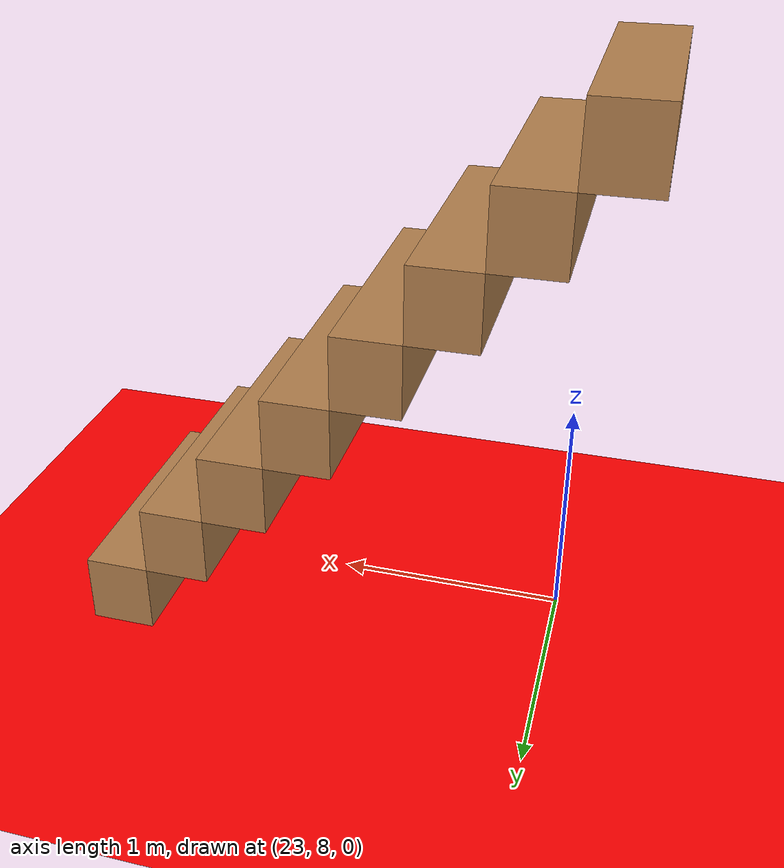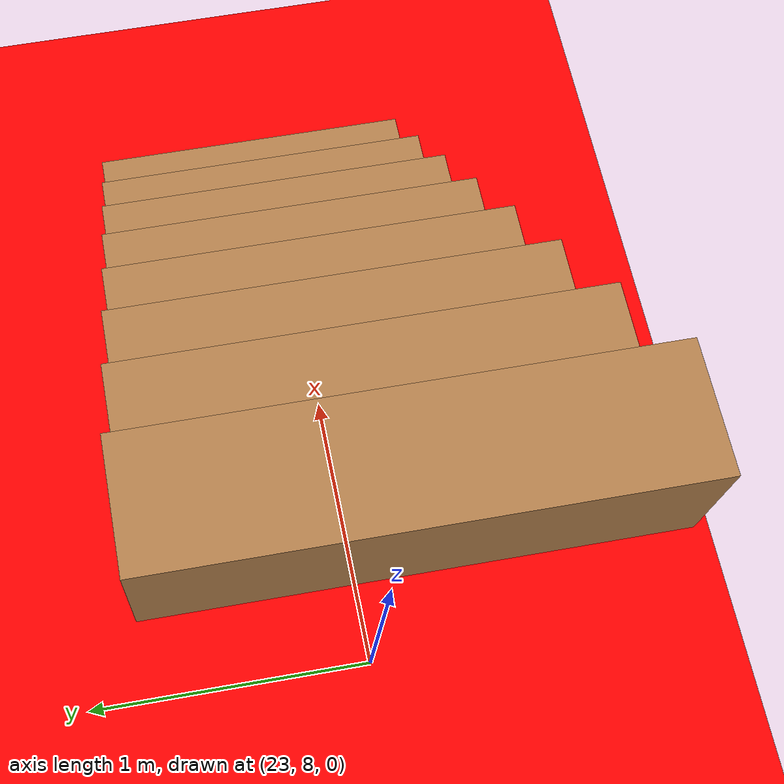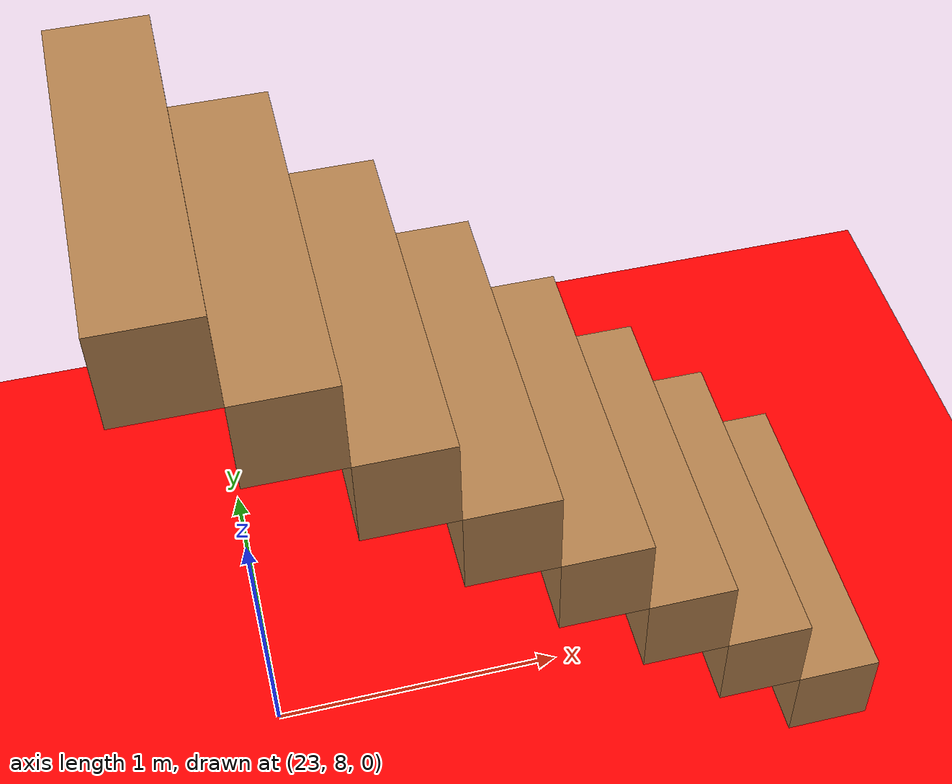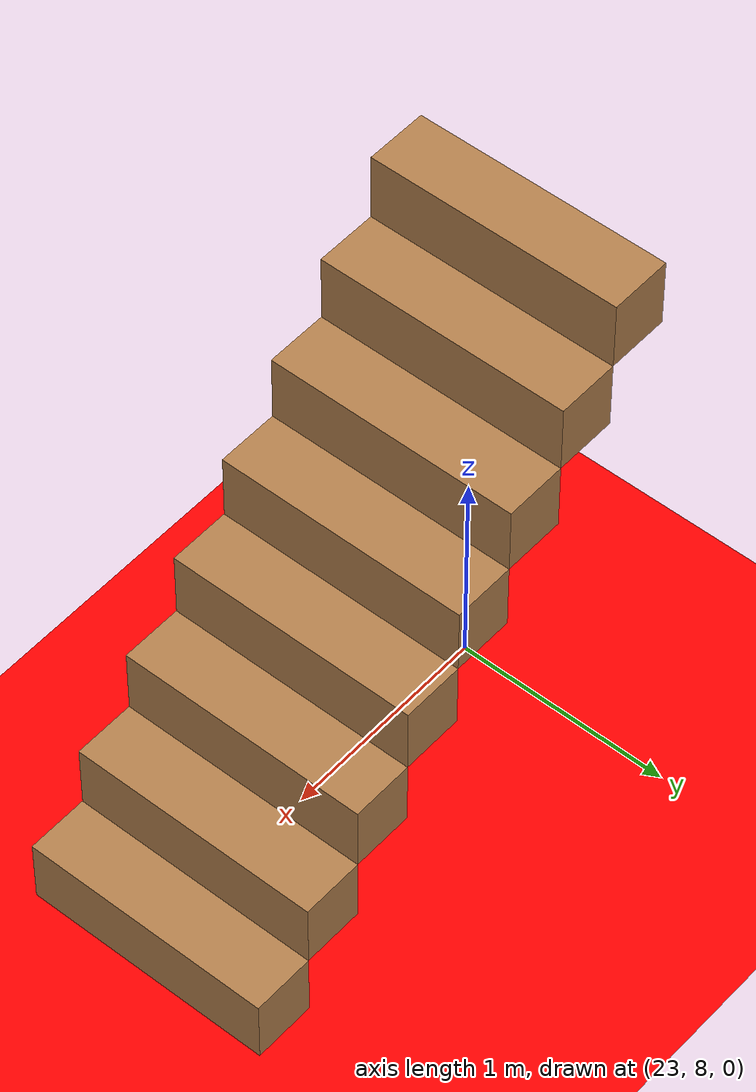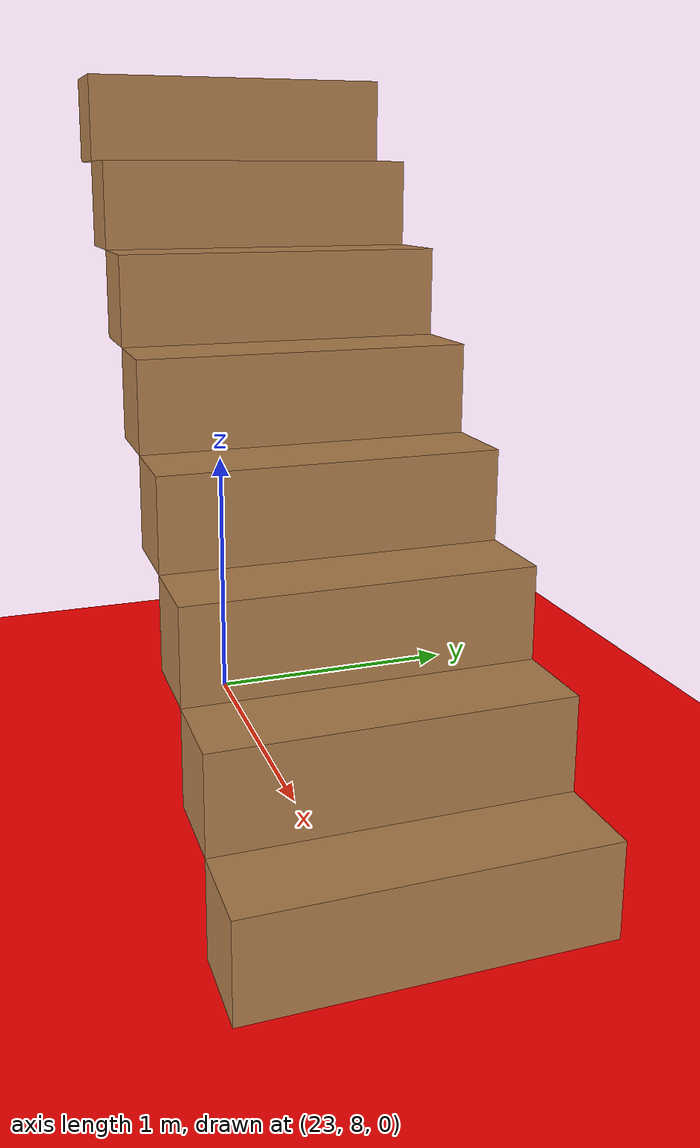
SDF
<sdf version="1.7">
 <world name="RaSpectLoc_ign">
  <model name="ground_plane">
   <static>1</static>
   <link name="link">
    <collision name="collision">
     <geometry><plane><normal>0 0 1</normal><size>100 100</size></plane></geometry>
     <surface><friction><ode><mu>100</mu><mu2>50</mu2></ode></friction></surface>
    </collision>
    <visual name="visual">
     <cast_shadows>0</cast_shadows>
     <geometry><plane><normal>0 0 1</normal><size>100 100</size></plane></geometry>
     <material><ambient>1 0 0 1</ambient><diffuse>1 0 0 1</diffuse><specular>0.1 0.1 0.1 1</specular></material>
    </visual>
   </link>
  </model>
  <model name="CVSSP">
   <pose>23.8714 24.094 0 0 -0 0</pose>
   <link name="Stairs_6">
    <visual name="Stairs_6_Visual_0">
     <pose>0.989254 -16.0013 0.15625 0 -0 -1.5708</pose>
     <geometry><box><size>1.145 0.28375 0.3125</size></box></geometry>
     <material>
      <script><uri>file://media/materials/scripts/gazebo.material</uri><name>Gazebo/Wood</name></script>
      <ambient>1 1 1 1</ambient>
     </material>
    </visual>
    <collision name="Stairs_6_Collision_0">
     <geometry><box><size>1.145 0.28375 0.3125</size></box></geometry>
     <pose>0.989254 -16.0013 0.15625 0 -0 -1.5708</pose>
    </collision>
    <visual name="Stairs_6_Visual_1">
     <pose>0.705504 -16.0013 0.46875 0 -0 -1.5708</pose>
     <geometry><box><size>1.145 0.28375 0.3125</size></box></geometry>
     <material>
      <script><uri>file://media/materials/scripts/gazebo.material</uri><name>Gazebo/Wood</name></script>
      <ambient>1 1 1 1</ambient>
     </material>
    </visual>
    <collision name="Stairs_6_Collision_1">
     <geometry><box><size>1.145 0.28375 0.3125</size></box></geometry>
     <pose>0.705504 -16.0013 0.46875 0 -0 -1.5708</pose>
    </collision>
    <visual name="Stairs_6_Visual_2">
     <pose>0.421754 -16.0013 0.78125 0 -0 -1.5708</pose>
     <geometry><box><size>1.145 0.28375 0.3125</size></box></geometry>
     <material>
      <script><uri>file://media/materials/scripts/gazebo.material</uri><name>Gazebo/Wood</name></script>
      <ambient>1 1 1 1</ambient>
     </material>
    </visual>
    <collision name="Stairs_6_Collision_2">
     <geometry><box><size>1.145 0.28375 0.3125</size></box></geometry>
     <pose>0.421754 -16.0013 0.78125 0 -0 -1.5708</pose>
    </collision>
    <visual name="Stairs_6_Visual_3">
     <pose>0.138004 -16.0013 1.09375 0 -0 -1.5708</pose>
     <geometry><box><size>1.145 0.28375 0.3125</size></box></geometry>
     <material>
      <script><uri>file://media/materials/scripts/gazebo.material</uri><name>Gazebo/Wood</name></script>
      <ambient>1 1 1 1</ambient>
     </material>
    </visual>
    <collision name="Stairs_6_Collision_3">
     <geometry><box><size>1.145 0.28375 0.3125</size></box></geometry>
     <pose>0.138004 -16.0013 1.09375 0 -0 -1.5708</pose>
    </collision>
    <visual name="Stairs_6_Visual_4">
     <pose>-0.145746 -16.0013 1.40625 0 -0 -1.5708</pose>
     <geometry><box><size>1.145 0.28375 0.3125</size></box></geometry>
     <material>
      <script><uri>file://media/materials/scripts/gazebo.material</uri><name>Gazebo/Wood</name></script>
      <ambient>1 1 1 1</ambient>
     </material>
    </visual>
    <collision name="Stairs_6_Collision_4">
     <geometry><box><size>1.145 0.28375 0.3125</size></box></geometry>
     <pose>-0.145746 -16.0013 1.40625 0 -0 -1.5708</pose>
    </collision>
    <visual name="Stairs_6_Visual_5">
     <pose>-0.429496 -16.0013 1.71875 0 -0 -1.5708</pose>
     <geometry><box><size>1.145 0.28375 0.3125</size></box></geometry>
     <material>
      <script><uri>file://media/materials/scripts/gazebo.material</uri><name>Gazebo/Wood</name></script>
      <ambient>1 1 1 1</ambient>
     </material>
    </visual>
    <collision name="Stairs_6_Collision_5">
     <geometry><box><size>1.145 0.28375 0.3125</size></box></geometry>
     <pose>-0.429496 -16.0013 1.71875 0 -0 -1.5708</pose>
    </collision>
    <visual name="Stairs_6_Visual_6">
     <pose>-0.713246 -16.0013 2.03125 0 -0 -1.5708</pose>
     <geometry><box><size>1.145 0.28375 0.3125</size></box></geometry>
     <material>
      <script><uri>file://media/materials/scripts/gazebo.material</uri><name>Gazebo/Wood</name></script>
      <ambient>1 1 1 1</ambient>
     </material>
    </visual>
    <collision name="Stairs_6_Collision_6">
     <geometry><box><size>1.145 0.28375 0.3125</size></box></geometry>
     <pose>-0.713246 -16.0013 2.03125 0 -0 -1.5708</pose>
    </collision>
    <visual name="Stairs_6_Visual_7">
     <pose>-0.996996 -16.0013 2.34375 0 -0 -1.5708</pose>
     <geometry><box><size>1.145 0.28375 0.3125</size></box></geometry>
     <material>
      <script><uri>file://media/materials/scripts/gazebo.material</uri><name>Gazebo/Wood</name></script>
      <ambient>1 1 1 1</ambient>
     </material>
    </visual>
    <collision name="Stairs_6_Collision_7">
     <geometry><box><size>1.145 0.28375 0.3125</size></box></geometry>
     <pose>-0.996996 -16.0013 2.34375 0 -0 -1.5708</pose>
    </collision>
   </link>
   <static>1</static>
  </model>
 </world>
</sdf>
